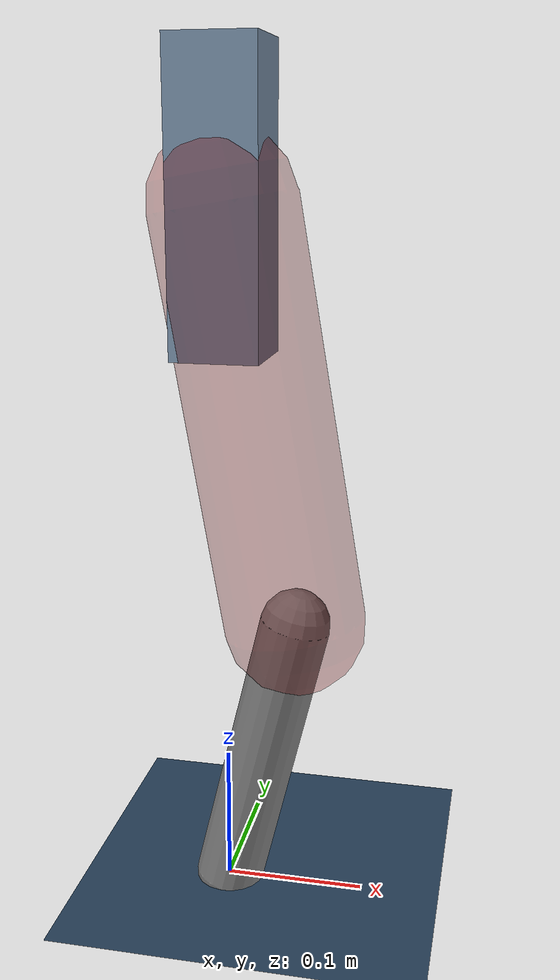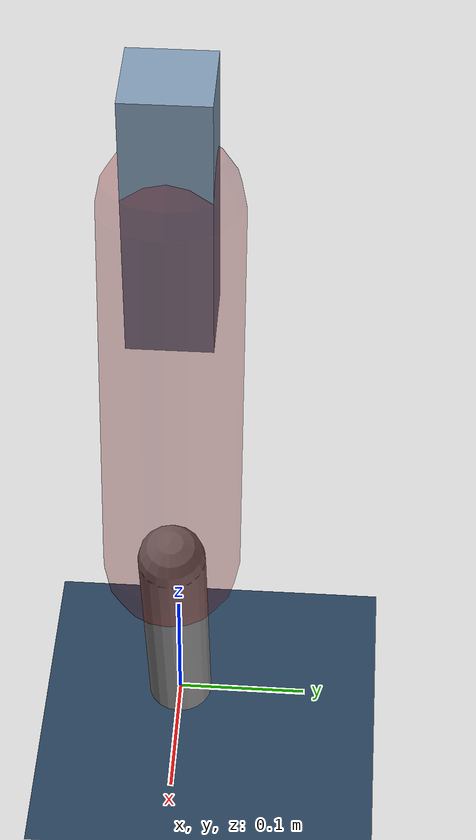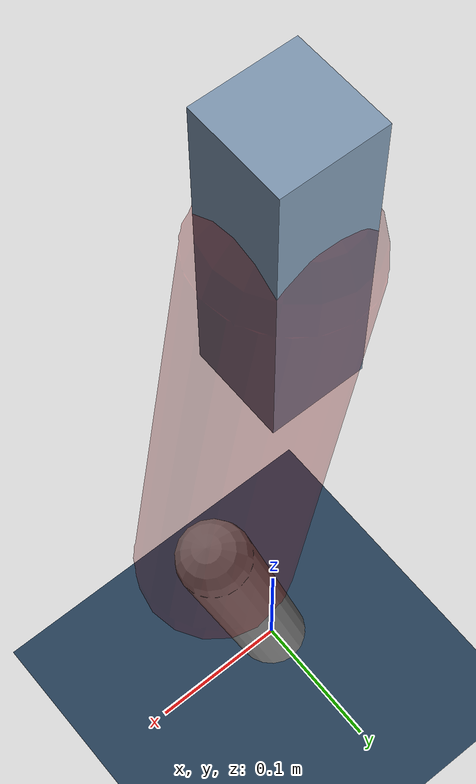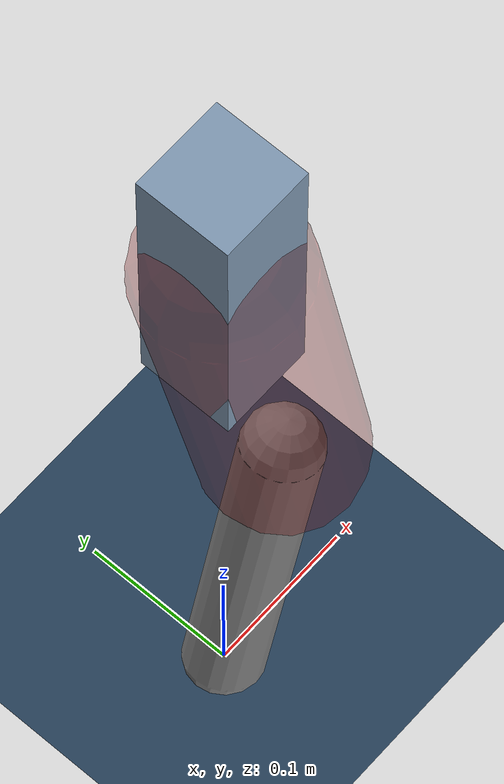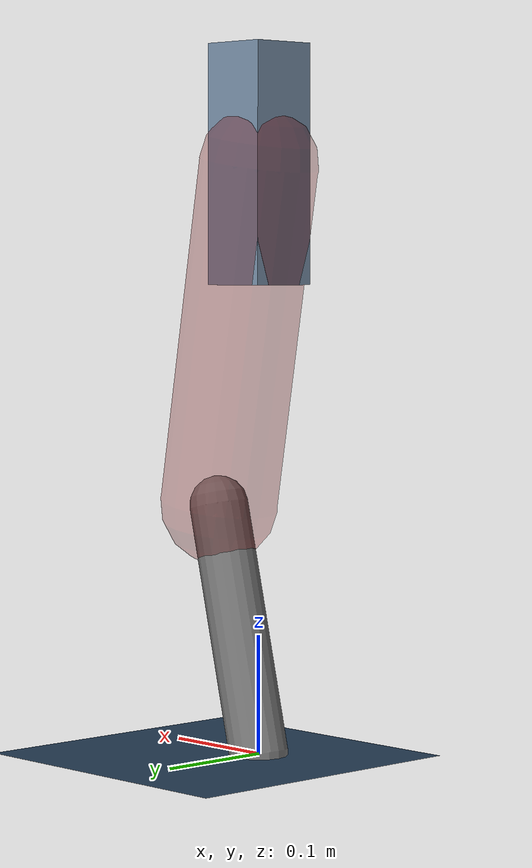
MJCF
<mujoco model="Hopper2D">
	<compiler inertiafromgeom="true" angle="radian" />
	<option timestep="0.001" integrator="implicit" cone="elliptic" solver="Newton" tolerance="1e-10" />

	<default>
		<geom contype="1" conaffinity="1" condim="3" friction="2 0.005 0.0001" solref="0.005 1" />
		<joint limited="true" damping="0.1" />
	</default>

	<asset>
		<texture name="skybox" type="skybox" builtin="gradient" rgb1=".4 .6 .8" rgb2="0 0 0" width="800" height="800" />
		<texture name="grid" type="2d" builtin="checker" rgb1=".1 .2 .3" rgb2=".2 .3 .4" width="300" height="300" mark="edge" markrgb=".2 .3 .4" />
		<material name="ground" texture="grid" texrepeat="1 1" texuniform="true" reflectance="0.1" />
		<material name="leg" rgba="0.5 0.6 0.7 1" />
	</asset>

	<worldbody>

		<geom name="floor" type="plane" size="5 5 0.25" material="ground" />

		<light directional="false" diffuse="0.8 0.8 0.8" specular="0.3 0.3 0.3" pos="0 0 2" dir="0 0 -1" />
		<light mode="targetbodycom" target="base" directional="false" diffuse="0.8 0.8 0.8" specular="0.3 0.3 0.3" pos="0 0 2" dir="0 0 -1" />

		<camera name="fixed" pos="0 -2 1" xyaxes="1 0 0 0 0 1" />
		<camera name="tracking" mode="trackcom" pos="0 -3 1" />

		<body name="root" pos="0 0 0.49417018748272024">
			<joint name="slide_x" type="slide" axis="1 0 0" range="-100 100" />
			<joint name="slide_z" type="slide" axis="0 0 1" range="0 10" />

			<body name="base" pos="0 0 0">
				<geom name="torso" type="box" size="0.03 0.03 0.1" mass="2.875" material="leg" />

				<body name="link1" pos="0 0 0" euler="0 1.4006064534147398 0">
					<joint type="hinge" axis="0 -1 0" pos="0 0 0" name="hinge1" limited="true" range="-3.14 3.14" stiffness="0" damping="0.1" />
					<geom name="thigh" type="capsule" fromto="0 0 0 0.2912402970122394 0 0" size="0.05" rgba="0.5 0 0 0.3" mass="0.9651488019330464" />

					<body name="link2" pos="0.2912402970122394 0 0" euler="0 0.403973050804277 0">
						<joint type="hinge" axis="0 -1 0" pos="0 0 0" name="hinge2" limited="true" range="-3.14 3.14" stiffness="0" damping="0.1" />
						<geom name="shank" type="capsule" fromto="0 0 0 0.2129298904704808 0 0" size="0.025" mass="0.41174391237638464" />

					</body>
				</body>
			</body>
		</body>
	</worldbody>

	<actuator>
		<motor name="torque1" joint="hinge1" ctrlrange="-127.22688385400788 127.22688385400788" ctrllimited="true" gear="1" />
		<motor name="torque2" joint="hinge2" ctrlrange="-95.96629782791024 95.96629782791024" ctrllimited="true" gear="1" />
	</actuator>
</mujoco>
